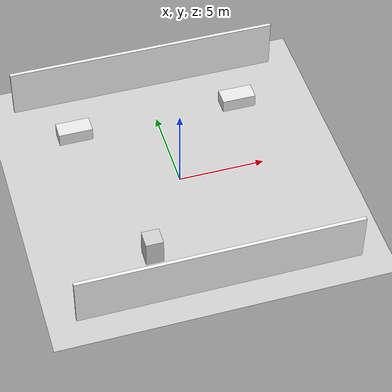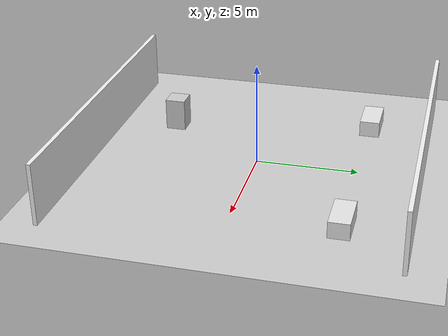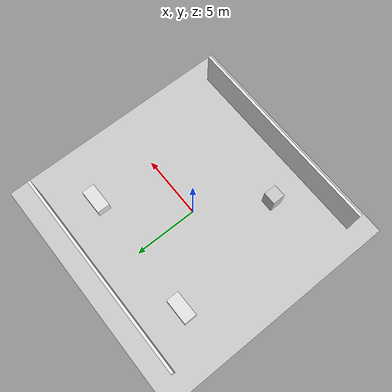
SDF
<?xml version="1.0" ?>
<sdf version="1.6">
  <world name="hospital">
    <include>
      <uri>model://sun</uri>
    </include>
    <include>
      <uri>model://ground_plane</uri>
    </include>

    <!-- Hospital corridors -->
    <model name="corridor_wall1">
      <static>true</static>
      <pose>0 8 1.5 0 0 0</pose>
      <link name="link">
        <collision name="collision">
          <geometry>
            <box>
              <size>16 0.2 3</size>
            </box>
          </geometry>
        </collision>
        <visual name="visual">
          <geometry>
            <box>
              <size>16 0.2 3</size>
            </box>
          </geometry>
          <material>
            <ambient>0.95 0.95 0.95 1</ambient>
          </material>
        </visual>
      </link>
    </model>

    <model name="corridor_wall2">
      <static>true</static>
      <pose>0 -8 1.5 0 0 0</pose>
      <link name="link">
        <collision name="collision">
          <geometry>
            <box>
              <size>16 0.2 3</size>
            </box>
          </geometry>
        </collision>
        <visual name="visual">
          <geometry>
            <box>
              <size>16 0.2 3</size>
            </box>
          </geometry>
          <material>
            <ambient>0.95 0.95 0.95 1</ambient>
          </material>
        </visual>
      </link>
    </model>

    <!-- Hospital beds -->
    <model name="bed1">
      <static>true</static>
      <pose>-5 5 0.4 0 0 0</pose>
      <link name="link">
        <collision name="collision">
          <geometry>
            <box>
              <size>2 1 0.8</size>
            </box>
          </geometry>
        </collision>
        <visual name="visual">
          <geometry>
            <box>
              <size>2 1 0.8</size>
            </box>
          </geometry>
          <material>
            <ambient>0.9 0.9 0.9 1</ambient>
          </material>
        </visual>
      </link>
    </model>

    <model name="bed2">
      <static>true</static>
      <pose>5 5 0.4 0 0 0</pose>
      <link name="link">
        <collision name="collision">
          <geometry>
            <box>
              <size>2 1 0.8</size>
            </box>
          </geometry>
        </collision>
        <visual name="visual">
          <geometry>
            <box>
              <size>2 1 0.8</size>
            </box>
          </geometry>
          <material>
            <ambient>0.9 0.9 0.9 1</ambient>
          </material>
        </visual>
      </link>
    </model>

    <!-- Medical equipment -->
    <model name="equipment1">
      <static>true</static>
      <pose>-3 -5 0.8 0 0 0</pose>
      <link name="link">
        <collision name="collision">
          <geometry>
            <box>
              <size>1 1 1.6</size>
            </box>
          </geometry>
        </collision>
        <visual name="visual">
          <geometry>
            <box>
              <size>1 1 1.6</size>
            </box>
          </geometry>
          <material>
            <ambient>0.8 0.8 0.8 1</ambient>
          </material>
        </visual>
      </link>
    </model>

  </world>
</sdf>
